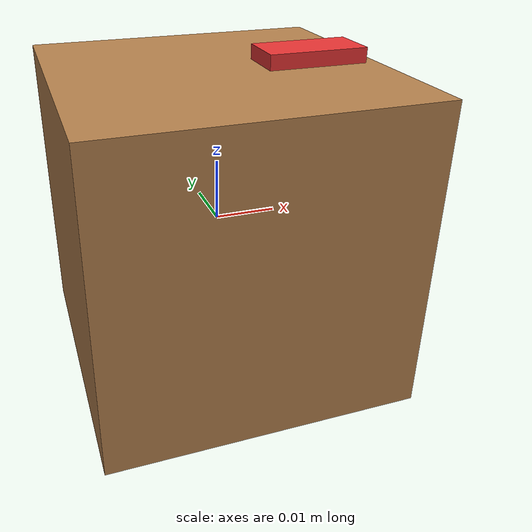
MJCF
<mujoco model="conveyor_cube">
  <asset>
    <texture file="../textures/light-wood.png" type="cube" name="cube-texture" />
    <material name="cube_mat" reflectance="0.7" texrepeat="1 1" texture="cube-texture"
      texuniform="true" />
  </asset>

  <worldbody>
    <body name="cube">
      <geom name="cube_collision" pos="0 0 0" size="0.025 0.025 0.025" type="box"
        solimp="0.7 0.8 0.03 0.5 2" solref="0.03 0.5"
        mass="0.1" friction="1.0 0.3 0.1" material="cube_mat" group="0" condim="4" />
      <geom name="yaw_marker" pos="0.015 0 0.0262" size="0.008 0.004 0.0012" type="box"
        mass="0" rgba="0.90 0.20 0.20 1" contype="0" conaffinity="0" group="1" />
      <site name="bottom_site" rgba="0 0 0 0" size="0.005" pos="0 0 -0.025" />
      <site name="top_site" rgba="0 0 0 0" size="0.005" pos="0 0 0.025" />
    </body>
  </worldbody>
</mujoco>
